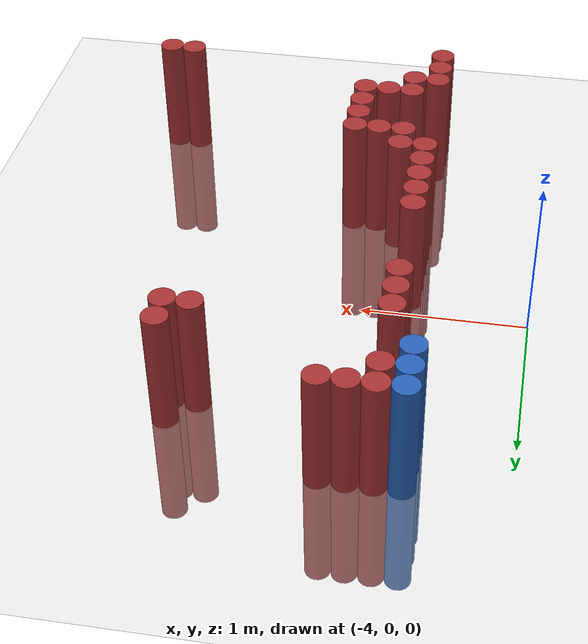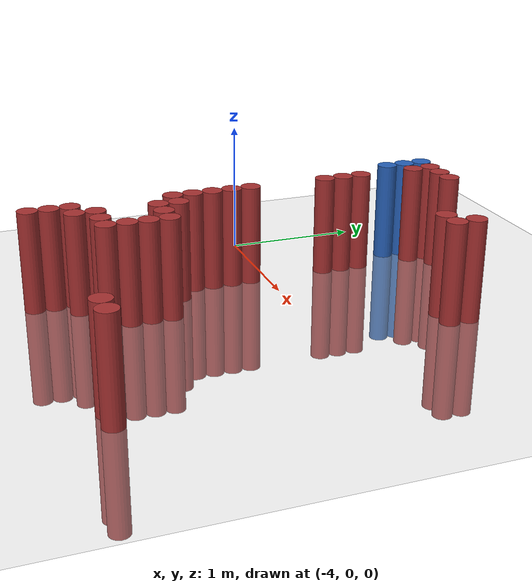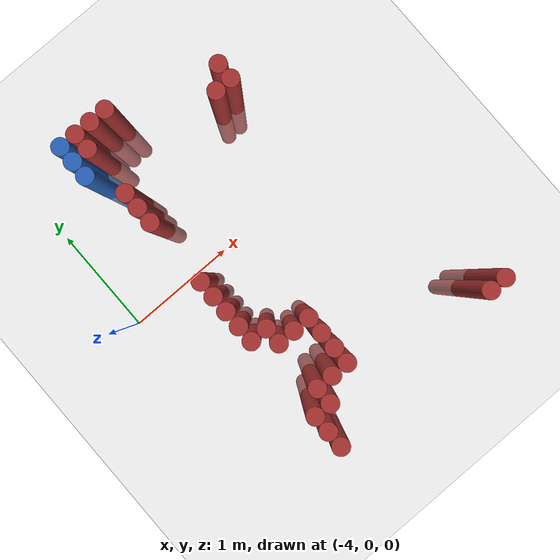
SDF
<sdf version="1.6">
 <world name="default">
  <model name="ground_plane">
   <static>1</static>
   <link name="link">
    <collision name="collision">
     <geometry><plane><normal>0 0 1</normal><size>100 100</size></plane></geometry>
     <surface><friction><ode><mu>100</mu><mu2>50</mu2></ode></friction></surface>
    </collision>
    <visual name="visual">
     <cast_shadows>0</cast_shadows>
     <geometry><plane><normal>0 0 1</normal><size>100 100</size></plane></geometry>
     <material>
      <script><uri>file://media/materials/scripts/gazebo.material</uri><name>Gazebo/Grey</name></script>
     </material>
    </visual>
   </link>
  </model>
  <model name="unit_cylinder_129">
   <static>1</static>
   <pose>-3.425000 1.075000 0.000000 0.000000 0.000000 0.000000</pose>
   <link name="link">
    <inertial>
     <mass>1</mass>
     <inertia><ixx>0.145833</ixx><ixy>0</ixy><ixz>0</ixz><iyy>0.145833</iyy><iyz>0</iyz><izz>0.125</izz></inertia>
    </inertial>
    <collision name="collision">
     <geometry><cylinder><radius>0.075000</radius><length>1.5</length></cylinder></geometry>
    </collision>
    <visual name="visual">
     <geometry><cylinder><radius>0.075000</radius><length>1.5</length></cylinder></geometry>
     <material>
      <ambient>0.152000 0.379000 0.720000 1</ambient>
      <diffuse>0.152000 0.379000 0.720000 1</diffuse>
     </material>
     <material>
      <script><name>Gazebo/Grey</name><uri>file://media/materials/scripts/gazebo.material</uri></script>
     </material>
    </visual>
   </link>
  </model>
  <model name="unit_cylinder_131">
   <static>1</static>
   <pose>-3.425000 1.225000 0.000000 0.000000 0.000000 0.000000</pose>
   <link name="link">
    <inertial>
     <mass>1</mass>
     <inertia><ixx>0.145833</ixx><ixy>0</ixy><ixz>0</ixz><iyy>0.145833</iyy><iyz>0</iyz><izz>0.125</izz></inertia>
    </inertial>
    <collision name="collision">
     <geometry><cylinder><radius>0.075000</radius><length>1.5</length></cylinder></geometry>
    </collision>
    <visual name="visual">
     <geometry><cylinder><radius>0.075000</radius><length>1.5</length></cylinder></geometry>
     <material>
      <ambient>0.152000 0.379000 0.720000 1</ambient>
      <diffuse>0.152000 0.379000 0.720000 1</diffuse>
     </material>
     <material>
      <script><name>Gazebo/Grey</name><uri>file://media/materials/scripts/gazebo.material</uri></script>
     </material>
    </visual>
   </link>
  </model>
  <model name="unit_cylinder_133">
   <static>1</static>
   <pose>-3.425000 1.375000 0.000000 0.000000 0.000000 0.000000</pose>
   <link name="link">
    <inertial>
     <mass>1</mass>
     <inertia><ixx>0.145833</ixx><ixy>0</ixy><ixz>0</ixz><iyy>0.145833</iyy><iyz>0</iyz><izz>0.125</izz></inertia>
    </inertial>
    <collision name="collision">
     <geometry><cylinder><radius>0.075000</radius><length>1.5</length></cylinder></geometry>
    </collision>
    <visual name="visual">
     <geometry><cylinder><radius>0.075000</radius><length>1.5</length></cylinder></geometry>
     <material>
      <ambient>0.152000 0.379000 0.720000 1</ambient>
      <diffuse>0.152000 0.379000 0.720000 1</diffuse>
     </material>
     <material>
      <script><name>Gazebo/Grey</name><uri>file://media/materials/scripts/gazebo.material</uri></script>
     </material>
    </visual>
   </link>
  </model>
  <model name="unit_cylinder_228">
   <static>1</static>
   <pose>-3.425000 1.075000 0.000000 0.000000 0.000000 0.000000</pose>
   <link name="link">
    <inertial>
     <mass>1</mass>
     <inertia><ixx>0.145833</ixx><ixy>0</ixy><ixz>0</ixz><iyy>0.145833</iyy><iyz>0</iyz><izz>0.125</izz></inertia>
    </inertial>
    <collision name="collision">
     <geometry><cylinder><radius>0.075000</radius><length>1.5</length></cylinder></geometry>
    </collision>
    <visual name="visual">
     <geometry><cylinder><radius>0.075000</radius><length>1.5</length></cylinder></geometry>
     <material>
      <ambient>0.152000 0.379000 0.720000 1</ambient>
      <diffuse>0.152000 0.379000 0.720000 1</diffuse>
     </material>
     <material>
      <script><name>Gazebo/Grey</name><uri>file://media/materials/scripts/gazebo.material</uri></script>
     </material>
    </visual>
   </link>
  </model>
  <model name="unit_cylinder_229">
   <static>1</static>
   <pose>-3.425000 1.225000 0.000000 0.000000 0.000000 0.000000</pose>
   <link name="link">
    <inertial>
     <mass>1</mass>
     <inertia><ixx>0.145833</ixx><ixy>0</ixy><ixz>0</ixz><iyy>0.145833</iyy><iyz>0</iyz><izz>0.125</izz></inertia>
    </inertial>
    <collision name="collision">
     <geometry><cylinder><radius>0.075000</radius><length>1.5</length></cylinder></geometry>
    </collision>
    <visual name="visual">
     <geometry><cylinder><radius>0.075000</radius><length>1.5</length></cylinder></geometry>
     <material>
      <ambient>0.152000 0.379000 0.720000 1</ambient>
      <diffuse>0.152000 0.379000 0.720000 1</diffuse>
     </material>
     <material>
      <script><name>Gazebo/Grey</name><uri>file://media/materials/scripts/gazebo.material</uri></script>
     </material>
    </visual>
   </link>
  </model>
  <model name="unit_cylinder_230">
   <static>1</static>
   <pose>-3.425000 1.375000 0.000000 0.000000 0.000000 0.000000</pose>
   <link name="link">
    <inertial>
     <mass>1</mass>
     <inertia><ixx>0.145833</ixx><ixy>0</ixy><ixz>0</ixz><iyy>0.145833</iyy><iyz>0</iyz><izz>0.125</izz></inertia>
    </inertial>
    <collision name="collision">
     <geometry><cylinder><radius>0.075000</radius><length>1.5</length></cylinder></geometry>
    </collision>
    <visual name="visual">
     <geometry><cylinder><radius>0.075000</radius><length>1.5</length></cylinder></geometry>
     <material>
      <ambient>0.152000 0.379000 0.720000 1</ambient>
      <diffuse>0.152000 0.379000 0.720000 1</diffuse>
     </material>
     <material>
      <script><name>Gazebo/Grey</name><uri>file://media/materials/scripts/gazebo.material</uri></script>
     </material>
    </visual>
   </link>
  </model>
  <model name="unit_cylinder_259">
   <static>1</static>
   <pose>-3.275000 -1.775000 0.000000 0.000000 0.000000 0.000000</pose>
   <link name="link">
    <inertial>
     <mass>1</mass>
     <inertia><ixx>0.145833</ixx><ixy>0</ixy><ixz>0</ixz><iyy>0.145833</iyy><iyz>0</iyz><izz>0.125</izz></inertia>
    </inertial>
    <collision name="collision">
     <geometry><cylinder><radius>0.075000</radius><length>1.5</length></cylinder></geometry>
    </collision>
    <visual name="visual">
     <geometry><cylinder><radius>0.075000</radius><length>1.5</length></cylinder></geometry>
     <material>
      <ambient>0.648000 0.192000 0.192000 1</ambient>
      <diffuse>0.648000 0.192000 0.192000 1</diffuse>
     </material>
     <material>
      <script><name>Gazebo/Grey</name><uri>file://media/materials/scripts/gazebo.material</uri></script>
     </material>
    </visual>
   </link>
  </model>
  <model name="unit_cylinder_260">
   <static>1</static>
   <pose>-3.275000 -1.625000 0.000000 0.000000 0.000000 0.000000</pose>
   <link name="link">
    <inertial>
     <mass>1</mass>
     <inertia><ixx>0.145833</ixx><ixy>0</ixy><ixz>0</ixz><iyy>0.145833</iyy><iyz>0</iyz><izz>0.125</izz></inertia>
    </inertial>
    <collision name="collision">
     <geometry><cylinder><radius>0.075000</radius><length>1.5</length></cylinder></geometry>
    </collision>
    <visual name="visual">
     <geometry><cylinder><radius>0.075000</radius><length>1.5</length></cylinder></geometry>
     <material>
      <ambient>0.648000 0.192000 0.192000 1</ambient>
      <diffuse>0.648000 0.192000 0.192000 1</diffuse>
     </material>
     <material>
      <script><name>Gazebo/Grey</name><uri>file://media/materials/scripts/gazebo.material</uri></script>
     </material>
    </visual>
   </link>
  </model>
  <model name="unit_cylinder_261">
   <static>1</static>
   <pose>-3.275000 -1.475000 0.000000 0.000000 0.000000 0.000000</pose>
   <link name="link">
    <inertial>
     <mass>1</mass>
     <inertia><ixx>0.145833</ixx><ixy>0</ixy><ixz>0</ixz><iyy>0.145833</iyy><iyz>0</iyz><izz>0.125</izz></inertia>
    </inertial>
    <collision name="collision">
     <geometry><cylinder><radius>0.075000</radius><length>1.5</length></cylinder></geometry>
    </collision>
    <visual name="visual">
     <geometry><cylinder><radius>0.075000</radius><length>1.5</length></cylinder></geometry>
     <material>
      <ambient>0.648000 0.192000 0.192000 1</ambient>
      <diffuse>0.648000 0.192000 0.192000 1</diffuse>
     </material>
     <material>
      <script><name>Gazebo/Grey</name><uri>file://media/materials/scripts/gazebo.material</uri></script>
     </material>
    </visual>
   </link>
  </model>
  <model name="unit_cylinder_262">
   <static>1</static>
   <pose>-3.275000 -0.725000 0.000000 0.000000 0.000000 0.000000</pose>
   <link name="link">
    <inertial>
     <mass>1</mass>
     <inertia><ixx>0.145833</ixx><ixy>0</ixy><ixz>0</ixz><iyy>0.145833</iyy><iyz>0</iyz><izz>0.125</izz></inertia>
    </inertial>
    <collision name="collision">
     <geometry><cylinder><radius>0.075000</radius><length>1.5</length></cylinder></geometry>
    </collision>
    <visual name="visual">
     <geometry><cylinder><radius>0.075000</radius><length>1.5</length></cylinder></geometry>
     <material>
      <ambient>0.648000 0.192000 0.192000 1</ambient>
      <diffuse>0.648000 0.192000 0.192000 1</diffuse>
     </material>
     <material>
      <script><name>Gazebo/Grey</name><uri>file://media/materials/scripts/gazebo.material</uri></script>
     </material>
    </visual>
   </link>
  </model>
  <model name="unit_cylinder_263">
   <static>1</static>
   <pose>-3.275000 -0.575000 0.000000 0.000000 0.000000 0.000000</pose>
   <link name="link">
    <inertial>
     <mass>1</mass>
     <inertia><ixx>0.145833</ixx><ixy>0</ixy><ixz>0</ixz><iyy>0.145833</iyy><iyz>0</iyz><izz>0.125</izz></inertia>
    </inertial>
    <collision name="collision">
     <geometry><cylinder><radius>0.075000</radius><length>1.5</length></cylinder></geometry>
    </collision>
    <visual name="visual">
     <geometry><cylinder><radius>0.075000</radius><length>1.5</length></cylinder></geometry>
     <material>
      <ambient>0.648000 0.192000 0.192000 1</ambient>
      <diffuse>0.648000 0.192000 0.192000 1</diffuse>
     </material>
     <material>
      <script><name>Gazebo/Grey</name><uri>file://media/materials/scripts/gazebo.material</uri></script>
     </material>
    </visual>
   </link>
  </model>
  <model name="unit_cylinder_264">
   <static>1</static>
   <pose>-3.275000 -0.425000 0.000000 0.000000 0.000000 0.000000</pose>
   <link name="link">
    <inertial>
     <mass>1</mass>
     <inertia><ixx>0.145833</ixx><ixy>0</ixy><ixz>0</ixz><iyy>0.145833</iyy><iyz>0</iyz><izz>0.125</izz></inertia>
    </inertial>
    <collision name="collision">
     <geometry><cylinder><radius>0.075000</radius><length>1.5</length></cylinder></geometry>
    </collision>
    <visual name="visual">
     <geometry><cylinder><radius>0.075000</radius><length>1.5</length></cylinder></geometry>
     <material>
      <ambient>0.648000 0.192000 0.192000 1</ambient>
      <diffuse>0.648000 0.192000 0.192000 1</diffuse>
     </material>
     <material>
      <script><name>Gazebo/Grey</name><uri>file://media/materials/scripts/gazebo.material</uri></script>
     </material>
    </visual>
   </link>
  </model>
  <model name="unit_cylinder_265">
   <static>1</static>
   <pose>-3.275000 -0.275000 0.000000 0.000000 0.000000 0.000000</pose>
   <link name="link">
    <inertial>
     <mass>1</mass>
     <inertia><ixx>0.145833</ixx><ixy>0</ixy><ixz>0</ixz><iyy>0.145833</iyy><iyz>0</iyz><izz>0.125</izz></inertia>
    </inertial>
    <collision name="collision">
     <geometry><cylinder><radius>0.075000</radius><length>1.5</length></cylinder></geometry>
    </collision>
    <visual name="visual">
     <geometry><cylinder><radius>0.075000</radius><length>1.5</length></cylinder></geometry>
     <material>
      <ambient>0.648000 0.192000 0.192000 1</ambient>
      <diffuse>0.648000 0.192000 0.192000 1</diffuse>
     </material>
     <material>
      <script><name>Gazebo/Grey</name><uri>file://media/materials/scripts/gazebo.material</uri></script>
     </material>
    </visual>
   </link>
  </model>
  <model name="unit_cylinder_266">
   <static>1</static>
   <pose>-3.275000 -0.125000 0.000000 0.000000 0.000000 0.000000</pose>
   <link name="link">
    <inertial>
     <mass>1</mass>
     <inertia><ixx>0.145833</ixx><ixy>0</ixy><ixz>0</ixz><iyy>0.145833</iyy><iyz>0</iyz><izz>0.125</izz></inertia>
    </inertial>
    <collision name="collision">
     <geometry><cylinder><radius>0.075000</radius><length>1.5</length></cylinder></geometry>
    </collision>
    <visual name="visual">
     <geometry><cylinder><radius>0.075000</radius><length>1.5</length></cylinder></geometry>
     <material>
      <ambient>0.648000 0.192000 0.192000 1</ambient>
      <diffuse>0.648000 0.192000 0.192000 1</diffuse>
     </material>
     <material>
      <script><name>Gazebo/Grey</name><uri>file://media/materials/scripts/gazebo.material</uri></script>
     </material>
    </visual>
   </link>
  </model>
  <model name="unit_cylinder_267">
   <static>1</static>
   <pose>-3.275000 0.475000 0.000000 0.000000 0.000000 0.000000</pose>
   <link name="link">
    <inertial>
     <mass>1</mass>
     <inertia><ixx>0.145833</ixx><ixy>0</ixy><ixz>0</ixz><iyy>0.145833</iyy><iyz>0</iyz><izz>0.125</izz></inertia>
    </inertial>
    <collision name="collision">
     <geometry><cylinder><radius>0.075000</radius><length>1.5</length></cylinder></geometry>
    </collision>
    <visual name="visual">
     <geometry><cylinder><radius>0.075000</radius><length>1.5</length></cylinder></geometry>
     <material>
      <ambient>0.648000 0.192000 0.192000 1</ambient>
      <diffuse>0.648000 0.192000 0.192000 1</diffuse>
     </material>
     <material>
      <script><name>Gazebo/Grey</name><uri>file://media/materials/scripts/gazebo.material</uri></script>
     </material>
    </visual>
   </link>
  </model>
  <model name="unit_cylinder_268">
   <static>1</static>
   <pose>-3.275000 0.625000 0.000000 0.000000 0.000000 0.000000</pose>
   <link name="link">
    <inertial>
     <mass>1</mass>
     <inertia><ixx>0.145833</ixx><ixy>0</ixy><ixz>0</ixz><iyy>0.145833</iyy><iyz>0</iyz><izz>0.125</izz></inertia>
    </inertial>
    <collision name="collision">
     <geometry><cylinder><radius>0.075000</radius><length>1.5</length></cylinder></geometry>
    </collision>
    <visual name="visual">
     <geometry><cylinder><radius>0.075000</radius><length>1.5</length></cylinder></geometry>
     <material>
      <ambient>0.648000 0.192000 0.192000 1</ambient>
      <diffuse>0.648000 0.192000 0.192000 1</diffuse>
     </material>
     <material>
      <script><name>Gazebo/Grey</name><uri>file://media/materials/scripts/gazebo.material</uri></script>
     </material>
    </visual>
   </link>
  </model>
  <model name="unit_cylinder_269">
   <static>1</static>
   <pose>-3.275000 0.775000 0.000000 0.000000 0.000000 0.000000</pose>
   <link name="link">
    <inertial>
     <mass>1</mass>
     <inertia><ixx>0.145833</ixx><ixy>0</ixy><ixz>0</ixz><iyy>0.145833</iyy><iyz>0</iyz><izz>0.125</izz></inertia>
    </inertial>
    <collision name="collision">
     <geometry><cylinder><radius>0.075000</radius><length>1.5</length></cylinder></geometry>
    </collision>
    <visual name="visual">
     <geometry><cylinder><radius>0.075000</radius><length>1.5</length></cylinder></geometry>
     <material>
      <ambient>0.648000 0.192000 0.192000 1</ambient>
      <diffuse>0.648000 0.192000 0.192000 1</diffuse>
     </material>
     <material>
      <script><name>Gazebo/Grey</name><uri>file://media/materials/scripts/gazebo.material</uri></script>
     </material>
    </visual>
   </link>
  </model>
  <model name="unit_cylinder_270">
   <static>1</static>
   <pose>-3.275000 1.225000 0.000000 0.000000 0.000000 0.000000</pose>
   <link name="link">
    <inertial>
     <mass>1</mass>
     <inertia><ixx>0.145833</ixx><ixy>0</ixy><ixz>0</ixz><iyy>0.145833</iyy><iyz>0</iyz><izz>0.125</izz></inertia>
    </inertial>
    <collision name="collision">
     <geometry><cylinder><radius>0.075000</radius><length>1.5</length></cylinder></geometry>
    </collision>
    <visual name="visual">
     <geometry><cylinder><radius>0.075000</radius><length>1.5</length></cylinder></geometry>
     <material>
      <ambient>0.648000 0.192000 0.192000 1</ambient>
      <diffuse>0.648000 0.192000 0.192000 1</diffuse>
     </material>
     <material>
      <script><name>Gazebo/Grey</name><uri>file://media/materials/scripts/gazebo.material</uri></script>
     </material>
    </visual>
   </link>
  </model>
  <model name="unit_cylinder_271">
   <static>1</static>
   <pose>-3.275000 1.375000 0.000000 0.000000 0.000000 0.000000</pose>
   <link name="link">
    <inertial>
     <mass>1</mass>
     <inertia><ixx>0.145833</ixx><ixy>0</ixy><ixz>0</ixz><iyy>0.145833</iyy><iyz>0</iyz><izz>0.125</izz></inertia>
    </inertial>
    <collision name="collision">
     <geometry><cylinder><radius>0.075000</radius><length>1.5</length></cylinder></geometry>
    </collision>
    <visual name="visual">
     <geometry><cylinder><radius>0.075000</radius><length>1.5</length></cylinder></geometry>
     <material>
      <ambient>0.648000 0.192000 0.192000 1</ambient>
      <diffuse>0.648000 0.192000 0.192000 1</diffuse>
     </material>
     <material>
      <script><name>Gazebo/Grey</name><uri>file://media/materials/scripts/gazebo.material</uri></script>
     </material>
    </visual>
   </link>
  </model>
  <model name="unit_cylinder_282">
   <static>1</static>
   <pose>-3.125000 -1.475000 0.000000 0.000000 0.000000 0.000000</pose>
   <link name="link">
    <inertial>
     <mass>1</mass>
     <inertia><ixx>0.145833</ixx><ixy>0</ixy><ixz>0</ixz><iyy>0.145833</iyy><iyz>0</iyz><izz>0.125</izz></inertia>
    </inertial>
    <collision name="collision">
     <geometry><cylinder><radius>0.075000</radius><length>1.5</length></cylinder></geometry>
    </collision>
    <visual name="visual">
     <geometry><cylinder><radius>0.075000</radius><length>1.5</length></cylinder></geometry>
     <material>
      <ambient>0.648000 0.192000 0.192000 1</ambient>
      <diffuse>0.648000 0.192000 0.192000 1</diffuse>
     </material>
     <material>
      <script><name>Gazebo/Grey</name><uri>file://media/materials/scripts/gazebo.material</uri></script>
     </material>
    </visual>
   </link>
  </model>
  <model name="unit_cylinder_283">
   <static>1</static>
   <pose>-3.125000 -1.325000 0.000000 0.000000 0.000000 0.000000</pose>
   <link name="link">
    <inertial>
     <mass>1</mass>
     <inertia><ixx>0.145833</ixx><ixy>0</ixy><ixz>0</ixz><iyy>0.145833</iyy><iyz>0</iyz><izz>0.125</izz></inertia>
    </inertial>
    <collision name="collision">
     <geometry><cylinder><radius>0.075000</radius><length>1.5</length></cylinder></geometry>
    </collision>
    <visual name="visual">
     <geometry><cylinder><radius>0.075000</radius><length>1.5</length></cylinder></geometry>
     <material>
      <ambient>0.648000 0.192000 0.192000 1</ambient>
      <diffuse>0.648000 0.192000 0.192000 1</diffuse>
     </material>
     <material>
      <script><name>Gazebo/Grey</name><uri>file://media/materials/scripts/gazebo.material</uri></script>
     </material>
    </visual>
   </link>
  </model>
  <model name="unit_cylinder_284">
   <static>1</static>
   <pose>-3.125000 -0.875000 0.000000 0.000000 0.000000 0.000000</pose>
   <link name="link">
    <inertial>
     <mass>1</mass>
     <inertia><ixx>0.145833</ixx><ixy>0</ixy><ixz>0</ixz><iyy>0.145833</iyy><iyz>0</iyz><izz>0.125</izz></inertia>
    </inertial>
    <collision name="collision">
     <geometry><cylinder><radius>0.075000</radius><length>1.5</length></cylinder></geometry>
    </collision>
    <visual name="visual">
     <geometry><cylinder><radius>0.075000</radius><length>1.5</length></cylinder></geometry>
     <material>
      <ambient>0.648000 0.192000 0.192000 1</ambient>
      <diffuse>0.648000 0.192000 0.192000 1</diffuse>
     </material>
     <material>
      <script><name>Gazebo/Grey</name><uri>file://media/materials/scripts/gazebo.material</uri></script>
     </material>
    </visual>
   </link>
  </model>
  <model name="unit_cylinder_285">
   <static>1</static>
   <pose>-3.125000 -0.725000 0.000000 0.000000 0.000000 0.000000</pose>
   <link name="link">
    <inertial>
     <mass>1</mass>
     <inertia><ixx>0.145833</ixx><ixy>0</ixy><ixz>0</ixz><iyy>0.145833</iyy><iyz>0</iyz><izz>0.125</izz></inertia>
    </inertial>
    <collision name="collision">
     <geometry><cylinder><radius>0.075000</radius><length>1.5</length></cylinder></geometry>
    </collision>
    <visual name="visual">
     <geometry><cylinder><radius>0.075000</radius><length>1.5</length></cylinder></geometry>
     <material>
      <ambient>0.648000 0.192000 0.192000 1</ambient>
      <diffuse>0.648000 0.192000 0.192000 1</diffuse>
     </material>
     <material>
      <script><name>Gazebo/Grey</name><uri>file://media/materials/scripts/gazebo.material</uri></script>
     </material>
    </visual>
   </link>
  </model>
  <model name="unit_cylinder_286">
   <static>1</static>
   <pose>-3.125000 1.375000 0.000000 0.000000 0.000000 0.000000</pose>
   <link name="link">
    <inertial>
     <mass>1</mass>
     <inertia><ixx>0.145833</ixx><ixy>0</ixy><ixz>0</ixz><iyy>0.145833</iyy><iyz>0</iyz><izz>0.125</izz></inertia>
    </inertial>
    <collision name="collision">
     <geometry><cylinder><radius>0.075000</radius><length>1.5</length></cylinder></geometry>
    </collision>
    <visual name="visual">
     <geometry><cylinder><radius>0.075000</radius><length>1.5</length></cylinder></geometry>
     <material>
      <ambient>0.648000 0.192000 0.192000 1</ambient>
      <diffuse>0.648000 0.192000 0.192000 1</diffuse>
     </material>
     <material>
      <script><name>Gazebo/Grey</name><uri>file://media/materials/scripts/gazebo.material</uri></script>
     </material>
    </visual>
   </link>
  </model>
  <model name="unit_cylinder_300">
   <static>1</static>
   <pose>-2.975000 -1.325000 0.000000 0.000000 0.000000 0.000000</pose>
   <link name="link">
    <inertial>
     <mass>1</mass>
     <inertia><ixx>0.145833</ixx><ixy>0</ixy><ixz>0</ixz><iyy>0.145833</iyy><iyz>0</iyz><izz>0.125</izz></inertia>
    </inertial>
    <collision name="collision">
     <geometry><cylinder><radius>0.075000</radius><length>1.5</length></cylinder></geometry>
    </collision>
    <visual name="visual">
     <geometry><cylinder><radius>0.075000</radius><length>1.5</length></cylinder></geometry>
     <material>
      <ambient>0.648000 0.192000 0.192000 1</ambient>
      <diffuse>0.648000 0.192000 0.192000 1</diffuse>
     </material>
     <material>
      <script><name>Gazebo/Grey</name><uri>file://media/materials/scripts/gazebo.material</uri></script>
     </material>
    </visual>
   </link>
  </model>
  <model name="unit_cylinder_301">
   <static>1</static>
   <pose>-2.975000 -0.875000 0.000000 0.000000 0.000000 0.000000</pose>
   <link name="link">
    <inertial>
     <mass>1</mass>
     <inertia><ixx>0.145833</ixx><ixy>0</ixy><ixz>0</ixz><iyy>0.145833</iyy><iyz>0</iyz><izz>0.125</izz></inertia>
    </inertial>
    <collision name="collision">
     <geometry><cylinder><radius>0.075000</radius><length>1.5</length></cylinder></geometry>
    </collision>
    <visual name="visual">
     <geometry><cylinder><radius>0.075000</radius><length>1.5</length></cylinder></geometry>
     <material>
      <ambient>0.648000 0.192000 0.192000 1</ambient>
      <diffuse>0.648000 0.192000 0.192000 1</diffuse>
     </material>
     <material>
      <script><name>Gazebo/Grey</name><uri>file://media/materials/scripts/gazebo.material</uri></script>
     </material>
    </visual>
   </link>
  </model>
  <model name="unit_cylinder_302">
   <static>1</static>
   <pose>-2.975000 1.375000 0.000000 0.000000 0.000000 0.000000</pose>
   <link name="link">
    <inertial>
     <mass>1</mass>
     <inertia><ixx>0.145833</ixx><ixy>0</ixy><ixz>0</ixz><iyy>0.145833</iyy><iyz>0</iyz><izz>0.125</izz></inertia>
    </inertial>
    <collision name="collision">
     <geometry><cylinder><radius>0.075000</radius><length>1.5</length></cylinder></geometry>
    </collision>
    <visual name="visual">
     <geometry><cylinder><radius>0.075000</radius><length>1.5</length></cylinder></geometry>
     <material>
      <ambient>0.648000 0.192000 0.192000 1</ambient>
      <diffuse>0.648000 0.192000 0.192000 1</diffuse>
     </material>
     <material>
      <script><name>Gazebo/Grey</name><uri>file://media/materials/scripts/gazebo.material</uri></script>
     </material>
    </visual>
   </link>
  </model>
  <model name="unit_cylinder_313">
   <static>1</static>
   <pose>-2.825000 -1.325000 0.000000 0.000000 0.000000 0.000000</pose>
   <link name="link">
    <inertial>
     <mass>1</mass>
     <inertia><ixx>0.145833</ixx><ixy>0</ixy><ixz>0</ixz><iyy>0.145833</iyy><iyz>0</iyz><izz>0.125</izz></inertia>
    </inertial>
    <collision name="collision">
     <geometry><cylinder><radius>0.075000</radius><length>1.5</length></cylinder></geometry>
    </collision>
    <visual name="visual">
     <geometry><cylinder><radius>0.075000</radius><length>1.5</length></cylinder></geometry>
     <material>
      <ambient>0.648000 0.192000 0.192000 1</ambient>
      <diffuse>0.648000 0.192000 0.192000 1</diffuse>
     </material>
     <material>
      <script><name>Gazebo/Grey</name><uri>file://media/materials/scripts/gazebo.material</uri></script>
     </material>
    </visual>
   </link>
  </model>
  <model name="unit_cylinder_314">
   <static>1</static>
   <pose>-2.825000 -1.175000 0.000000 0.000000 0.000000 0.000000</pose>
   <link name="link">
    <inertial>
     <mass>1</mass>
     <inertia><ixx>0.145833</ixx><ixy>0</ixy><ixz>0</ixz><iyy>0.145833</iyy><iyz>0</iyz><izz>0.125</izz></inertia>
    </inertial>
    <collision name="collision">
     <geometry><cylinder><radius>0.075000</radius><length>1.5</length></cylinder></geometry>
    </collision>
    <visual name="visual">
     <geometry><cylinder><radius>0.075000</radius><length>1.5</length></cylinder></geometry>
     <material>
      <ambient>0.648000 0.192000 0.192000 1</ambient>
      <diffuse>0.648000 0.192000 0.192000 1</diffuse>
     </material>
     <material>
      <script><name>Gazebo/Grey</name><uri>file://media/materials/scripts/gazebo.material</uri></script>
     </material>
    </visual>
   </link>
  </model>
  <model name="unit_cylinder_315">
   <static>1</static>
   <pose>-2.825000 -1.025000 0.000000 0.000000 0.000000 0.000000</pose>
   <link name="link">
    <inertial>
     <mass>1</mass>
     <inertia><ixx>0.145833</ixx><ixy>0</ixy><ixz>0</ixz><iyy>0.145833</iyy><iyz>0</iyz><izz>0.125</izz></inertia>
    </inertial>
    <collision name="collision">
     <geometry><cylinder><radius>0.075000</radius><length>1.5</length></cylinder></geometry>
    </collision>
    <visual name="visual">
     <geometry><cylinder><radius>0.075000</radius><length>1.5</length></cylinder></geometry>
     <material>
      <ambient>0.648000 0.192000 0.192000 1</ambient>
      <diffuse>0.648000 0.192000 0.192000 1</diffuse>
     </material>
     <material>
      <script><name>Gazebo/Grey</name><uri>file://media/materials/scripts/gazebo.material</uri></script>
     </material>
    </visual>
   </link>
  </model>
  <model name="unit_cylinder_316">
   <static>1</static>
   <pose>-2.825000 -0.875000 0.000000 0.000000 0.000000 0.000000</pose>
   <link name="link">
    <inertial>
     <mass>1</mass>
     <inertia><ixx>0.145833</ixx><ixy>0</ixy><ixz>0</ixz><iyy>0.145833</iyy><iyz>0</iyz><izz>0.125</izz></inertia>
    </inertial>
    <collision name="collision">
     <geometry><cylinder><radius>0.075000</radius><length>1.5</length></cylinder></geometry>
    </collision>
    <visual name="visual">
     <geometry><cylinder><radius>0.075000</radius><length>1.5</length></cylinder></geometry>
     <material>
      <ambient>0.648000 0.192000 0.192000 1</ambient>
      <diffuse>0.648000 0.192000 0.192000 1</diffuse>
     </material>
     <material>
      <script><name>Gazebo/Grey</name><uri>file://media/materials/scripts/gazebo.material</uri></script>
     </material>
    </visual>
   </link>
  </model>
  <model name="unit_cylinder_336">
   <static>1</static>
   <pose>-2.225000 0.925000 0.000000 0.000000 0.000000 0.000000</pose>
   <link name="link">
    <inertial>
     <mass>1</mass>
     <inertia><ixx>0.145833</ixx><ixy>0</ixy><ixz>0</ixz><iyy>0.145833</iyy><iyz>0</iyz><izz>0.125</izz></inertia>
    </inertial>
    <collision name="collision">
     <geometry><cylinder><radius>0.075000</radius><length>1.5</length></cylinder></geometry>
    </collision>
    <visual name="visual">
     <geometry><cylinder><radius>0.075000</radius><length>1.5</length></cylinder></geometry>
     <material>
      <ambient>0.648000 0.192000 0.192000 1</ambient>
      <diffuse>0.648000 0.192000 0.192000 1</diffuse>
     </material>
     <material>
      <script><name>Gazebo/Grey</name><uri>file://media/materials/scripts/gazebo.material</uri></script>
     </material>
    </visual>
   </link>
  </model>
  <model name="unit_cylinder_337">
   <static>1</static>
   <pose>-2.075000 0.925000 0.000000 0.000000 0.000000 0.000000</pose>
   <link name="link">
    <inertial>
     <mass>1</mass>
     <inertia><ixx>0.145833</ixx><ixy>0</ixy><ixz>0</ixz><iyy>0.145833</iyy><iyz>0</iyz><izz>0.125</izz></inertia>
    </inertial>
    <collision name="collision">
     <geometry><cylinder><radius>0.075000</radius><length>1.5</length></cylinder></geometry>
    </collision>
    <visual name="visual">
     <geometry><cylinder><radius>0.075000</radius><length>1.5</length></cylinder></geometry>
     <material>
      <ambient>0.648000 0.192000 0.192000 1</ambient>
      <diffuse>0.648000 0.192000 0.192000 1</diffuse>
     </material>
     <material>
      <script><name>Gazebo/Grey</name><uri>file://media/materials/scripts/gazebo.material</uri></script>
     </material>
    </visual>
   </link>
  </model>
  <model name="unit_cylinder_338">
   <static>1</static>
   <pose>-2.075000 1.075000 0.000000 0.000000 0.000000 0.000000</pose>
   <link name="link">
    <inertial>
     <mass>1</mass>
     <inertia><ixx>0.145833</ixx><ixy>0</ixy><ixz>0</ixz><iyy>0.145833</iyy><iyz>0</iyz><izz>0.125</izz></inertia>
    </inertial>
    <collision name="collision">
     <geometry><cylinder><radius>0.075000</radius><length>1.5</length></cylinder></geometry>
    </collision>
    <visual name="visual">
     <geometry><cylinder><radius>0.075000</radius><length>1.5</length></cylinder></geometry>
     <material>
      <ambient>0.648000 0.192000 0.192000 1</ambient>
      <diffuse>0.648000 0.192000 0.192000 1</diffuse>
     </material>
     <material>
      <script><name>Gazebo/Grey</name><uri>file://media/materials/scripts/gazebo.material</uri></script>
     </material>
    </visual>
   </link>
  </model>
  <model name="unit_cylinder_342">
   <static>1</static>
   <pose>-1.625000 -1.625000 0.000000 0.000000 0.000000 0.000000</pose>
   <link name="link">
    <inertial>
     <mass>1</mass>
     <inertia><ixx>0.145833</ixx><ixy>0</ixy><ixz>0</ixz><iyy>0.145833</iyy><iyz>0</iyz><izz>0.125</izz></inertia>
    </inertial>
    <collision name="collision">
     <geometry><cylinder><radius>0.075000</radius><length>1.5</length></cylinder></geometry>
    </collision>
    <visual name="visual">
     <geometry><cylinder><radius>0.075000</radius><length>1.5</length></cylinder></geometry>
     <material>
      <ambient>0.648000 0.192000 0.192000 1</ambient>
      <diffuse>0.648000 0.192000 0.192000 1</diffuse>
     </material>
     <material>
      <script><name>Gazebo/Grey</name><uri>file://media/materials/scripts/gazebo.material</uri></script>
     </material>
    </visual>
   </link>
  </model>
  <model name="unit_cylinder_343">
   <static>1</static>
   <pose>-1.475000 -1.625000 0.000000 0.000000 0.000000 0.000000</pose>
   <link name="link">
    <inertial>
     <mass>1</mass>
     <inertia><ixx>0.145833</ixx><ixy>0</ixy><ixz>0</ixz><iyy>0.145833</iyy><iyz>0</iyz><izz>0.125</izz></inertia>
    </inertial>
    <collision name="collision">
     <geometry><cylinder><radius>0.075000</radius><length>1.5</length></cylinder></geometry>
    </collision>
    <visual name="visual">
     <geometry><cylinder><radius>0.075000</radius><length>1.5</length></cylinder></geometry>
     <material>
      <ambient>0.648000 0.192000 0.192000 1</ambient>
      <diffuse>0.648000 0.192000 0.192000 1</diffuse>
     </material>
     <material>
      <script><name>Gazebo/Grey</name><uri>file://media/materials/scripts/gazebo.material</uri></script>
     </material>
    </visual>
   </link>
  </model>
 </world>
</sdf>
